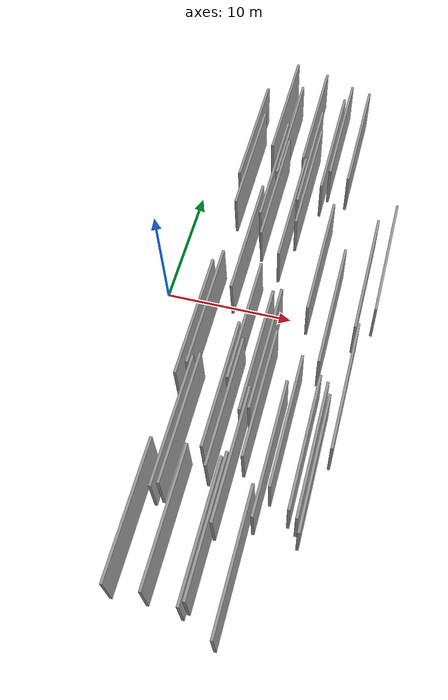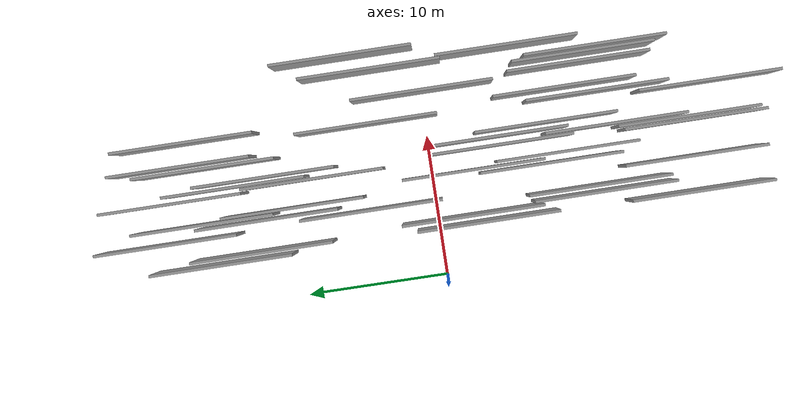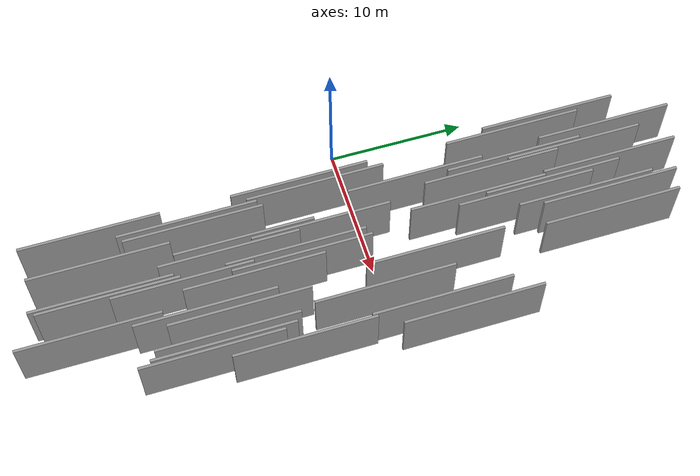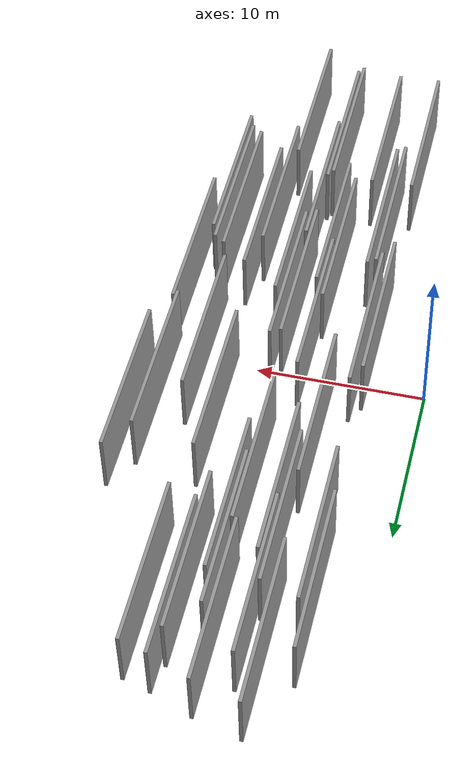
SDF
<sdf version="1.6">
 <world name="default">
  <scene>
   <sky><clouds><speed>12</speed></clouds></sky>
   <ambient>0.4 0.4 0.4 1</ambient>
   <background>0.7 0.7 0.7 1</background>
   <shadows>1</shadows>
  </scene>
  <gravity>0 0 -9.8066</gravity>
  <magnetic_field>6e-06 2.3e-05 -4.2e-05</magnetic_field>
  <physics default="0" name="default_physics" type="ode">
   <ode>
    <solver>
     <type>quick</type>
     <iters>10</iters>
     <sor>1.0</sor>
     <use_dynamic_moi_rescaling>0</use_dynamic_moi_rescaling>
    </solver>
    <constraints>
     <cfm>0</cfm>
     <erp>0.2</erp>
     <contact_max_correcting_vel>100</contact_max_correcting_vel>
     <contact_surface_layer>0.001</contact_surface_layer>
    </constraints>
   </ode>
   <max_step_size>0.004</max_step_size>
   <real_time_factor>1</real_time_factor>
   <real_time_update_rate>250</real_time_update_rate>
  </physics>
  <light name="sun" type="directional">
   <pose>0 0 10 0 0 0</pose>
   <diffuse>0.8 0.8 0.8 1</diffuse>
   <specular>0.2 0.2 0.2 1</specular>
   <attenuation>
    <range>1000</range>
    <constant>0.9</constant>
    <linear>0.01</linear>
    <quadratic>0.001</quadratic>
   </attenuation>
   <direction>-0.5 0.1 -0.9</direction>
  </light>
  <model name="grey_wall_1">
   <static>1</static>
   <pose>16.3726 5.1101 0.0 0.000000 0.000000 1.570796</pose>
   <link name="link">
    <pose>0 0 2.00 0 0 0</pose>
    <collision name="collision"><geometry><box><size>10.00 0.2 4.00</size></box></geometry></collision>
    <visual name="visual">
     <cast_shadows>0</cast_shadows>
     <geometry><box><size>10.00 0.2 4.00</size></box></geometry>
     <material>
      <script>
       <uri>model://grey_wall/materials/scripts</uri>
       <uri>model://grey_wall/materials/textures</uri>
       <name>vrc/grey_wall</name>
      </script>
     </material>
    </visual>
   </link>
  </model>
  <model name="grey_wall_2">
   <static>1</static>
   <pose>14.4678 -12.4414 0.0 0.000000 0.000000 1.570796</pose>
   <link name="link">
    <pose>0 0 2.00 0 0 0</pose>
    <collision name="collision"><geometry><box><size>10.00 0.2 4.00</size></box></geometry></collision>
    <visual name="visual">
     <cast_shadows>0</cast_shadows>
     <geometry><box><size>10.00 0.2 4.00</size></box></geometry>
     <material>
      <script>
       <uri>model://grey_wall/materials/scripts</uri>
       <uri>model://grey_wall/materials/textures</uri>
       <name>vrc/grey_wall</name>
      </script>
     </material>
    </visual>
   </link>
  </model>
  <model name="grey_wall_3">
   <static>1</static>
   <pose>13.5207 -11.1368 0.0 0.000000 0.000000 1.570796</pose>
   <link name="link">
    <pose>0 0 2.00 0 0 0</pose>
    <collision name="collision"><geometry><box><size>10.00 0.2 4.00</size></box></geometry></collision>
    <visual name="visual">
     <cast_shadows>0</cast_shadows>
     <geometry><box><size>10.00 0.2 4.00</size></box></geometry>
     <material>
      <script>
       <uri>model://grey_wall/materials/scripts</uri>
       <uri>model://grey_wall/materials/textures</uri>
       <name>vrc/grey_wall</name>
      </script>
     </material>
    </visual>
   </link>
  </model>
  <model name="grey_wall_4">
   <static>1</static>
   <pose>8.8303 11.6349 0.0 0.000000 0.000000 1.570796</pose>
   <link name="link">
    <pose>0 0 2.00 0 0 0</pose>
    <collision name="collision"><geometry><box><size>10.00 0.2 4.00</size></box></geometry></collision>
    <visual name="visual">
     <cast_shadows>0</cast_shadows>
     <geometry><box><size>10.00 0.2 4.00</size></box></geometry>
     <material>
      <script>
       <uri>model://grey_wall/materials/scripts</uri>
       <uri>model://grey_wall/materials/textures</uri>
       <name>vrc/grey_wall</name>
      </script>
     </material>
    </visual>
   </link>
  </model>
  <model name="grey_wall_5">
   <static>1</static>
   <pose>8.5995 -18.1956 0.0 0.000000 0.000000 1.570796</pose>
   <link name="link">
    <pose>0 0 2.00 0 0 0</pose>
    <collision name="collision"><geometry><box><size>10.00 0.2 4.00</size></box></geometry></collision>
    <visual name="visual">
     <cast_shadows>0</cast_shadows>
     <geometry><box><size>10.00 0.2 4.00</size></box></geometry>
     <material>
      <script>
       <uri>model://grey_wall/materials/scripts</uri>
       <uri>model://grey_wall/materials/textures</uri>
       <name>vrc/grey_wall</name>
      </script>
     </material>
    </visual>
   </link>
  </model>
  <model name="grey_wall_6">
   <static>1</static>
   <pose>5.8146 -18.2855 0.0 0.000000 0.000000 1.570796</pose>
   <link name="link">
    <pose>0 0 2.00 0 0 0</pose>
    <collision name="collision"><geometry><box><size>10.00 0.2 4.00</size></box></geometry></collision>
    <visual name="visual">
     <cast_shadows>0</cast_shadows>
     <geometry><box><size>10.00 0.2 4.00</size></box></geometry>
     <material>
      <script>
       <uri>model://grey_wall/materials/scripts</uri>
       <uri>model://grey_wall/materials/textures</uri>
       <name>vrc/grey_wall</name>
      </script>
     </material>
    </visual>
   </link>
  </model>
  <model name="grey_wall_7">
   <static>1</static>
   <pose>11.9483 -9.9297 0.0 0.000000 0.000000 1.570796</pose>
   <link name="link">
    <pose>0 0 2.00 0 0 0</pose>
    <collision name="collision"><geometry><box><size>10.00 0.2 4.00</size></box></geometry></collision>
    <visual name="visual">
     <cast_shadows>0</cast_shadows>
     <geometry><box><size>10.00 0.2 4.00</size></box></geometry>
     <material>
      <script>
       <uri>model://grey_wall/materials/scripts</uri>
       <uri>model://grey_wall/materials/textures</uri>
       <name>vrc/grey_wall</name>
      </script>
     </material>
    </visual>
   </link>
  </model>
  <model name="grey_wall_8">
   <static>1</static>
   <pose>8.8784 -13.1266 0.0 0.000000 0.000000 1.570796</pose>
   <link name="link">
    <pose>0 0 2.00 0 0 0</pose>
    <collision name="collision"><geometry><box><size>10.00 0.2 4.00</size></box></geometry></collision>
    <visual name="visual">
     <cast_shadows>0</cast_shadows>
     <geometry><box><size>10.00 0.2 4.00</size></box></geometry>
     <material>
      <script>
       <uri>model://grey_wall/materials/scripts</uri>
       <uri>model://grey_wall/materials/textures</uri>
       <name>vrc/grey_wall</name>
      </script>
     </material>
    </visual>
   </link>
  </model>
  <model name="grey_wall_9">
   <static>1</static>
   <pose>15.3824 -6.3594 0.0 0.000000 0.000000 1.570796</pose>
   <link name="link">
    <pose>0 0 2.00 0 0 0</pose>
    <collision name="collision"><geometry><box><size>10.00 0.2 4.00</size></box></geometry></collision>
    <visual name="visual">
     <cast_shadows>0</cast_shadows>
     <geometry><box><size>10.00 0.2 4.00</size></box></geometry>
     <material>
      <script>
       <uri>model://grey_wall/materials/scripts</uri>
       <uri>model://grey_wall/materials/textures</uri>
       <name>vrc/grey_wall</name>
      </script>
     </material>
    </visual>
   </link>
  </model>
  <model name="grey_wall_10">
   <static>1</static>
   <pose>5.8717 11.8155 0.0 0.000000 0.000000 1.570796</pose>
   <link name="link">
    <pose>0 0 2.00 0 0 0</pose>
    <collision name="collision"><geometry><box><size>10.00 0.2 4.00</size></box></geometry></collision>
    <visual name="visual">
     <cast_shadows>0</cast_shadows>
     <geometry><box><size>10.00 0.2 4.00</size></box></geometry>
     <material>
      <script>
       <uri>model://grey_wall/materials/scripts</uri>
       <uri>model://grey_wall/materials/textures</uri>
       <name>vrc/grey_wall</name>
      </script>
     </material>
    </visual>
   </link>
  </model>
  <model name="grey_wall_11">
   <static>1</static>
   <pose>3.3426 -18.4088 0.0 0.000000 0.000000 1.570796</pose>
   <link name="link">
    <pose>0 0 2.00 0 0 0</pose>
    <collision name="collision"><geometry><box><size>10.00 0.2 4.00</size></box></geometry></collision>
    <visual name="visual">
     <cast_shadows>0</cast_shadows>
     <geometry><box><size>10.00 0.2 4.00</size></box></geometry>
     <material>
      <script>
       <uri>model://grey_wall/materials/scripts</uri>
       <uri>model://grey_wall/materials/textures</uri>
       <name>vrc/grey_wall</name>
      </script>
     </material>
    </visual>
   </link>
  </model>
  <model name="grey_wall_12">
   <static>1</static>
   <pose>10.4175 17.3347 0.0 0.000000 0.000000 1.570796</pose>
   <link name="link">
    <pose>0 0 2.00 0 0 0</pose>
    <collision name="collision"><geometry><box><size>10.00 0.2 4.00</size></box></geometry></collision>
    <visual name="visual">
     <cast_shadows>0</cast_shadows>
     <geometry><box><size>10.00 0.2 4.00</size></box></geometry>
     <material>
      <script>
       <uri>model://grey_wall/materials/scripts</uri>
       <uri>model://grey_wall/materials/textures</uri>
       <name>vrc/grey_wall</name>
      </script>
     </material>
    </visual>
   </link>
  </model>
  <model name="grey_wall_13">
   <static>1</static>
   <pose>11.4310 4.0471 0.0 0.000000 0.000000 1.570796</pose>
   <link name="link">
    <pose>0 0 2.00 0 0 0</pose>
    <collision name="collision"><geometry><box><size>10.00 0.2 4.00</size></box></geometry></collision>
    <visual name="visual">
     <cast_shadows>0</cast_shadows>
     <geometry><box><size>10.00 0.2 4.00</size></box></geometry>
     <material>
      <script>
       <uri>model://grey_wall/materials/scripts</uri>
       <uri>model://grey_wall/materials/textures</uri>
       <name>vrc/grey_wall</name>
      </script>
     </material>
    </visual>
   </link>
  </model>
  <model name="grey_wall_14">
   <static>1</static>
   <pose>12.0141 16.8772 0.0 0.000000 0.000000 1.570796</pose>
   <link name="link">
    <pose>0 0 2.00 0 0 0</pose>
    <collision name="collision"><geometry><box><size>10.00 0.2 4.00</size></box></geometry></collision>
    <visual name="visual">
     <cast_shadows>0</cast_shadows>
     <geometry><box><size>10.00 0.2 4.00</size></box></geometry>
     <material>
      <script>
       <uri>model://grey_wall/materials/scripts</uri>
       <uri>model://grey_wall/materials/textures</uri>
       <name>vrc/grey_wall</name>
      </script>
     </material>
    </visual>
   </link>
  </model>
  <model name="grey_wall_15">
   <static>1</static>
   <pose>3.6835 12.4816 0.0 0.000000 0.000000 1.570796</pose>
   <link name="link">
    <pose>0 0 2.00 0 0 0</pose>
    <collision name="collision"><geometry><box><size>10.00 0.2 4.00</size></box></geometry></collision>
    <visual name="visual">
     <cast_shadows>0</cast_shadows>
     <geometry><box><size>10.00 0.2 4.00</size></box></geometry>
     <material>
      <script>
       <uri>model://grey_wall/materials/scripts</uri>
       <uri>model://grey_wall/materials/textures</uri>
       <name>vrc/grey_wall</name>
      </script>
     </material>
    </visual>
   </link>
  </model>
  <model name="grey_wall_16">
   <static>1</static>
   <pose>3.4563 -3.3983 0.0 0.000000 0.000000 1.570796</pose>
   <link name="link">
    <pose>0 0 2.00 0 0 0</pose>
    <collision name="collision"><geometry><box><size>10.00 0.2 4.00</size></box></geometry></collision>
    <visual name="visual">
     <cast_shadows>0</cast_shadows>
     <geometry><box><size>10.00 0.2 4.00</size></box></geometry>
     <material>
      <script>
       <uri>model://grey_wall/materials/scripts</uri>
       <uri>model://grey_wall/materials/textures</uri>
       <name>vrc/grey_wall</name>
      </script>
     </material>
    </visual>
   </link>
  </model>
  <model name="grey_wall_17">
   <static>1</static>
   <pose>11.3253 -12.1282 0.0 0.000000 0.000000 1.570796</pose>
   <link name="link">
    <pose>0 0 2.00 0 0 0</pose>
    <collision name="collision"><geometry><box><size>10.00 0.2 4.00</size></box></geometry></collision>
    <visual name="visual">
     <cast_shadows>0</cast_shadows>
     <geometry><box><size>10.00 0.2 4.00</size></box></geometry>
     <material>
      <script>
       <uri>model://grey_wall/materials/scripts</uri>
       <uri>model://grey_wall/materials/textures</uri>
       <name>vrc/grey_wall</name>
      </script>
     </material>
    </visual>
   </link>
  </model>
  <model name="grey_wall_18">
   <static>1</static>
   <pose>14.1453 -11.5605 0.0 0.000000 0.000000 1.570796</pose>
   <link name="link">
    <pose>0 0 2.00 0 0 0</pose>
    <collision name="collision"><geometry><box><size>10.00 0.2 4.00</size></box></geometry></collision>
    <visual name="visual">
     <cast_shadows>0</cast_shadows>
     <geometry><box><size>10.00 0.2 4.00</size></box></geometry>
     <material>
      <script>
       <uri>model://grey_wall/materials/scripts</uri>
       <uri>model://grey_wall/materials/textures</uri>
       <name>vrc/grey_wall</name>
      </script>
     </material>
    </visual>
   </link>
  </model>
  <model name="grey_wall_19">
   <static>1</static>
   <pose>5.4418 4.5537 0.0 0.000000 0.000000 1.570796</pose>
   <link name="link">
    <pose>0 0 2.00 0 0 0</pose>
    <collision name="collision"><geometry><box><size>10.00 0.2 4.00</size></box></geometry></collision>
    <visual name="visual">
     <cast_shadows>0</cast_shadows>
     <geometry><box><size>10.00 0.2 4.00</size></box></geometry>
     <material>
      <script>
       <uri>model://grey_wall/materials/scripts</uri>
       <uri>model://grey_wall/materials/textures</uri>
       <name>vrc/grey_wall</name>
      </script>
     </material>
    </visual>
   </link>
  </model>
  <model name="grey_wall_20">
   <static>1</static>
   <pose>8.3228 -18.6007 0.0 0.000000 0.000000 1.570796</pose>
   <link name="link">
    <pose>0 0 2.00 0 0 0</pose>
    <collision name="collision"><geometry><box><size>10.00 0.2 4.00</size></box></geometry></collision>
    <visual name="visual">
     <cast_shadows>0</cast_shadows>
     <geometry><box><size>10.00 0.2 4.00</size></box></geometry>
     <material>
      <script>
       <uri>model://grey_wall/materials/scripts</uri>
       <uri>model://grey_wall/materials/textures</uri>
       <name>vrc/grey_wall</name>
      </script>
     </material>
    </visual>
   </link>
  </model>
  <model name="grey_wall_21">
   <static>1</static>
   <pose>6.1828 16.2755 0.0 0.000000 0.000000 1.570796</pose>
   <link name="link">
    <pose>0 0 2.00 0 0 0</pose>
    <collision name="collision"><geometry><box><size>10.00 0.2 4.00</size></box></geometry></collision>
    <visual name="visual">
     <cast_shadows>0</cast_shadows>
     <geometry><box><size>10.00 0.2 4.00</size></box></geometry>
     <material>
      <script>
       <uri>model://grey_wall/materials/scripts</uri>
       <uri>model://grey_wall/materials/textures</uri>
       <name>vrc/grey_wall</name>
      </script>
     </material>
    </visual>
   </link>
  </model>
  <model name="grey_wall_22">
   <static>1</static>
   <pose>15.1658 3.2987 0.0 0.000000 0.000000 1.570796</pose>
   <link name="link">
    <pose>0 0 2.00 0 0 0</pose>
    <collision name="collision"><geometry><box><size>10.00 0.2 4.00</size></box></geometry></collision>
    <visual name="visual">
     <cast_shadows>0</cast_shadows>
     <geometry><box><size>10.00 0.2 4.00</size></box></geometry>
     <material>
      <script>
       <uri>model://grey_wall/materials/scripts</uri>
       <uri>model://grey_wall/materials/textures</uri>
       <name>vrc/grey_wall</name>
      </script>
     </material>
    </visual>
   </link>
  </model>
  <model name="grey_wall_23">
   <static>1</static>
   <pose>10.8510 -19.9565 0.0 0.000000 0.000000 1.570796</pose>
   <link name="link">
    <pose>0 0 2.00 0 0 0</pose>
    <collision name="collision"><geometry><box><size>10.00 0.2 4.00</size></box></geometry></collision>
    <visual name="visual">
     <cast_shadows>0</cast_shadows>
     <geometry><box><size>10.00 0.2 4.00</size></box></geometry>
     <material>
      <script>
       <uri>model://grey_wall/materials/scripts</uri>
       <uri>model://grey_wall/materials/textures</uri>
       <name>vrc/grey_wall</name>
      </script>
     </material>
    </visual>
   </link>
  </model>
  <model name="grey_wall_24">
   <static>1</static>
   <pose>4.7761 -11.4144 0.0 0.000000 0.000000 1.570796</pose>
   <link name="link">
    <pose>0 0 2.00 0 0 0</pose>
    <collision name="collision"><geometry><box><size>10.00 0.2 4.00</size></box></geometry></collision>
    <visual name="visual">
     <cast_shadows>0</cast_shadows>
     <geometry><box><size>10.00 0.2 4.00</size></box></geometry>
     <material>
      <script>
       <uri>model://grey_wall/materials/scripts</uri>
       <uri>model://grey_wall/materials/textures</uri>
       <name>vrc/grey_wall</name>
      </script>
     </material>
    </visual>
   </link>
  </model>
  <model name="grey_wall_25">
   <static>1</static>
   <pose>7.4531 -9.5289 0.0 0.000000 0.000000 1.570796</pose>
   <link name="link">
    <pose>0 0 2.00 0 0 0</pose>
    <collision name="collision"><geometry><box><size>10.00 0.2 4.00</size></box></geometry></collision>
    <visual name="visual">
     <cast_shadows>0</cast_shadows>
     <geometry><box><size>10.00 0.2 4.00</size></box></geometry>
     <material>
      <script>
       <uri>model://grey_wall/materials/scripts</uri>
       <uri>model://grey_wall/materials/textures</uri>
       <name>vrc/grey_wall</name>
      </script>
     </material>
    </visual>
   </link>
  </model>
  <model name="grey_wall_26">
   <static>1</static>
   <pose>7.1513 -2.8729 0.0 0.000000 0.000000 1.570796</pose>
   <link name="link">
    <pose>0 0 2.00 0 0 0</pose>
    <collision name="collision"><geometry><box><size>10.00 0.2 4.00</size></box></geometry></collision>
    <visual name="visual">
     <cast_shadows>0</cast_shadows>
     <geometry><box><size>10.00 0.2 4.00</size></box></geometry>
     <material>
      <script>
       <uri>model://grey_wall/materials/scripts</uri>
       <uri>model://grey_wall/materials/textures</uri>
       <name>vrc/grey_wall</name>
      </script>
     </material>
    </visual>
   </link>
  </model>
  <model name="grey_wall_27">
   <static>1</static>
   <pose>7.9524 18.2716 0.0 0.000000 0.000000 1.570796</pose>
   <link name="link">
    <pose>0 0 2.00 0 0 0</pose>
    <collision name="collision"><geometry><box><size>10.00 0.2 4.00</size></box></geometry></collision>
    <visual name="visual">
     <cast_shadows>0</cast_shadows>
     <geometry><box><size>10.00 0.2 4.00</size></box></geometry>
     <material>
      <script>
       <uri>model://grey_wall/materials/scripts</uri>
       <uri>model://grey_wall/materials/textures</uri>
       <name>vrc/grey_wall</name>
      </script>
     </material>
    </visual>
   </link>
  </model>
  <model name="grey_wall_28">
   <static>1</static>
   <pose>6.4123 9.9309 0.0 0.000000 0.000000 1.570796</pose>
   <link name="link">
    <pose>0 0 2.00 0 0 0</pose>
    <collision name="collision"><geometry><box><size>10.00 0.2 4.00</size></box></geometry></collision>
    <visual name="visual">
     <cast_shadows>0</cast_shadows>
     <geometry><box><size>10.00 0.2 4.00</size></box></geometry>
     <material>
      <script>
       <uri>model://grey_wall/materials/scripts</uri>
       <uri>model://grey_wall/materials/textures</uri>
       <name>vrc/grey_wall</name>
      </script>
     </material>
    </visual>
   </link>
  </model>
  <model name="grey_wall_29">
   <static>1</static>
   <pose>8.4632 13.7903 0.0 0.000000 0.000000 1.570796</pose>
   <link name="link">
    <pose>0 0 2.00 0 0 0</pose>
    <collision name="collision"><geometry><box><size>10.00 0.2 4.00</size></box></geometry></collision>
    <visual name="visual">
     <cast_shadows>0</cast_shadows>
     <geometry><box><size>10.00 0.2 4.00</size></box></geometry>
     <material>
      <script>
       <uri>model://grey_wall/materials/scripts</uri>
       <uri>model://grey_wall/materials/textures</uri>
       <name>vrc/grey_wall</name>
      </script>
     </material>
    </visual>
   </link>
  </model>
  <model name="grey_wall_30">
   <static>1</static>
   <pose>8.2078 8.3042 0.0 0.000000 0.000000 1.570796</pose>
   <link name="link">
    <pose>0 0 2.00 0 0 0</pose>
    <collision name="collision"><geometry><box><size>10.00 0.2 4.00</size></box></geometry></collision>
    <visual name="visual">
     <cast_shadows>0</cast_shadows>
     <geometry><box><size>10.00 0.2 4.00</size></box></geometry>
     <material>
      <script>
       <uri>model://grey_wall/materials/scripts</uri>
       <uri>model://grey_wall/materials/textures</uri>
       <name>vrc/grey_wall</name>
      </script>
     </material>
    </visual>
   </link>
  </model>
  <model name="grey_wall_31">
   <static>1</static>
   <pose>8.6092 -5.0825 0.0 0.000000 0.000000 1.570796</pose>
   <link name="link">
    <pose>0 0 2.00 0 0 0</pose>
    <collision name="collision"><geometry><box><size>10.00 0.2 4.00</size></box></geometry></collision>
    <visual name="visual">
     <cast_shadows>0</cast_shadows>
     <geometry><box><size>10.00 0.2 4.00</size></box></geometry>
     <material>
      <script>
       <uri>model://grey_wall/materials/scripts</uri>
       <uri>model://grey_wall/materials/textures</uri>
       <name>vrc/grey_wall</name>
      </script>
     </material>
    </visual>
   </link>
  </model>
  <model name="grey_wall_32">
   <static>1</static>
   <pose>9.2055 -4.7877 0.0 0.000000 0.000000 1.570796</pose>
   <link name="link">
    <pose>0 0 2.00 0 0 0</pose>
    <collision name="collision"><geometry><box><size>10.00 0.2 4.00</size></box></geometry></collision>
    <visual name="visual">
     <cast_shadows>0</cast_shadows>
     <geometry><box><size>10.00 0.2 4.00</size></box></geometry>
     <material>
      <script>
       <uri>model://grey_wall/materials/scripts</uri>
       <uri>model://grey_wall/materials/textures</uri>
       <name>vrc/grey_wall</name>
      </script>
     </material>
    </visual>
   </link>
  </model>
  <model name="grey_wall_33">
   <static>1</static>
   <pose>4.0180 -2.3888 0.0 0.000000 0.000000 1.570796</pose>
   <link name="link">
    <pose>0 0 2.00 0 0 0</pose>
    <collision name="collision"><geometry><box><size>10.00 0.2 4.00</size></box></geometry></collision>
    <visual name="visual">
     <cast_shadows>0</cast_shadows>
     <geometry><box><size>10.00 0.2 4.00</size></box></geometry>
     <material>
      <script>
       <uri>model://grey_wall/materials/scripts</uri>
       <uri>model://grey_wall/materials/textures</uri>
       <name>vrc/grey_wall</name>
      </script>
     </material>
    </visual>
   </link>
  </model>
  <model name="grey_wall_34">
   <static>1</static>
   <pose>9.6763 -8.3036 0.0 0.000000 0.000000 1.570796</pose>
   <link name="link">
    <pose>0 0 2.00 0 0 0</pose>
    <collision name="collision"><geometry><box><size>10.00 0.2 4.00</size></box></geometry></collision>
    <visual name="visual">
     <cast_shadows>0</cast_shadows>
     <geometry><box><size>10.00 0.2 4.00</size></box></geometry>
     <material>
      <script>
       <uri>model://grey_wall/materials/scripts</uri>
       <uri>model://grey_wall/materials/textures</uri>
       <name>vrc/grey_wall</name>
      </script>
     </material>
    </visual>
   </link>
  </model>
  <model name="grey_wall_35">
   <static>1</static>
   <pose>3.2280 15.3766 0.0 0.000000 0.000000 1.570796</pose>
   <link name="link">
    <pose>0 0 2.00 0 0 0</pose>
    <collision name="collision"><geometry><box><size>10.00 0.2 4.00</size></box></geometry></collision>
    <visual name="visual">
     <cast_shadows>0</cast_shadows>
     <geometry><box><size>10.00 0.2 4.00</size></box></geometry>
     <material>
      <script>
       <uri>model://grey_wall/materials/scripts</uri>
       <uri>model://grey_wall/materials/textures</uri>
       <name>vrc/grey_wall</name>
      </script>
     </material>
    </visual>
   </link>
  </model>
  <model name="grey_wall_36">
   <static>1</static>
   <pose>5.1615 18.9726 0.0 0.000000 0.000000 1.570796</pose>
   <link name="link">
    <pose>0 0 2.00 0 0 0</pose>
    <collision name="collision"><geometry><box><size>10.00 0.2 4.00</size></box></geometry></collision>
    <visual name="visual">
     <cast_shadows>0</cast_shadows>
     <geometry><box><size>10.00 0.2 4.00</size></box></geometry>
     <material>
      <script>
       <uri>model://grey_wall/materials/scripts</uri>
       <uri>model://grey_wall/materials/textures</uri>
       <name>vrc/grey_wall</name>
      </script>
     </material>
    </visual>
   </link>
  </model>
  <model name="grey_wall_37">
   <static>1</static>
   <pose>10.0373 15.6563 0.0 0.000000 0.000000 1.570796</pose>
   <link name="link">
    <pose>0 0 2.00 0 0 0</pose>
    <collision name="collision"><geometry><box><size>10.00 0.2 4.00</size></box></geometry></collision>
    <visual name="visual">
     <cast_shadows>0</cast_shadows>
     <geometry><box><size>10.00 0.2 4.00</size></box></geometry>
     <material>
      <script>
       <uri>model://grey_wall/materials/scripts</uri>
       <uri>model://grey_wall/materials/textures</uri>
       <name>vrc/grey_wall</name>
      </script>
     </material>
    </visual>
   </link>
  </model>
  <model name="grey_wall_38">
   <static>1</static>
   <pose>13.1709 -0.1128 0.0 0.000000 0.000000 1.570796</pose>
   <link name="link">
    <pose>0 0 2.00 0 0 0</pose>
    <collision name="collision"><geometry><box><size>10.00 0.2 4.00</size></box></geometry></collision>
    <visual name="visual">
     <cast_shadows>0</cast_shadows>
     <geometry><box><size>10.00 0.2 4.00</size></box></geometry>
     <material>
      <script>
       <uri>model://grey_wall/materials/scripts</uri>
       <uri>model://grey_wall/materials/textures</uri>
       <name>vrc/grey_wall</name>
      </script>
     </material>
    </visual>
   </link>
  </model>
  <model name="grey_wall_39">
   <static>1</static>
   <pose>6.8315 -8.2927 0.0 0.000000 0.000000 1.570796</pose>
   <link name="link">
    <pose>0 0 2.00 0 0 0</pose>
    <collision name="collision"><geometry><box><size>10.00 0.2 4.00</size></box></geometry></collision>
    <visual name="visual">
     <cast_shadows>0</cast_shadows>
     <geometry><box><size>10.00 0.2 4.00</size></box></geometry>
     <material>
      <script>
       <uri>model://grey_wall/materials/scripts</uri>
       <uri>model://grey_wall/materials/textures</uri>
       <name>vrc/grey_wall</name>
      </script>
     </material>
    </visual>
   </link>
  </model>
  <model name="grey_wall_40">
   <static>1</static>
   <pose>4.3065 -11.7328 0.0 0.000000 0.000000 1.570796</pose>
   <link name="link">
    <pose>0 0 2.00 0 0 0</pose>
    <collision name="collision"><geometry><box><size>10.00 0.2 4.00</size></box></geometry></collision>
    <visual name="visual">
     <cast_shadows>0</cast_shadows>
     <geometry><box><size>10.00 0.2 4.00</size></box></geometry>
     <material>
      <script>
       <uri>model://grey_wall/materials/scripts</uri>
       <uri>model://grey_wall/materials/textures</uri>
       <name>vrc/grey_wall</name>
      </script>
     </material>
    </visual>
   </link>
  </model>
 </world>
</sdf>
